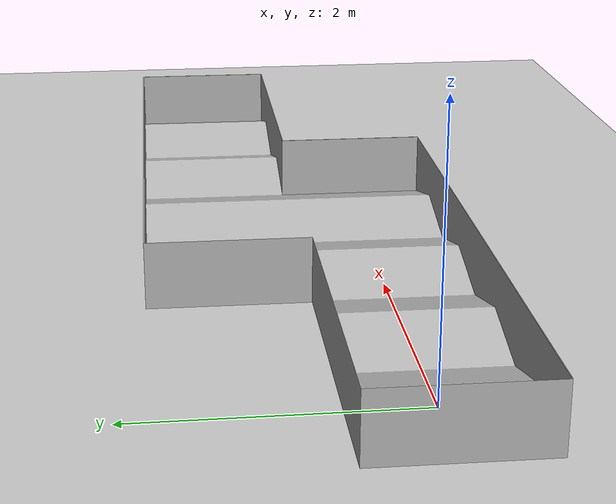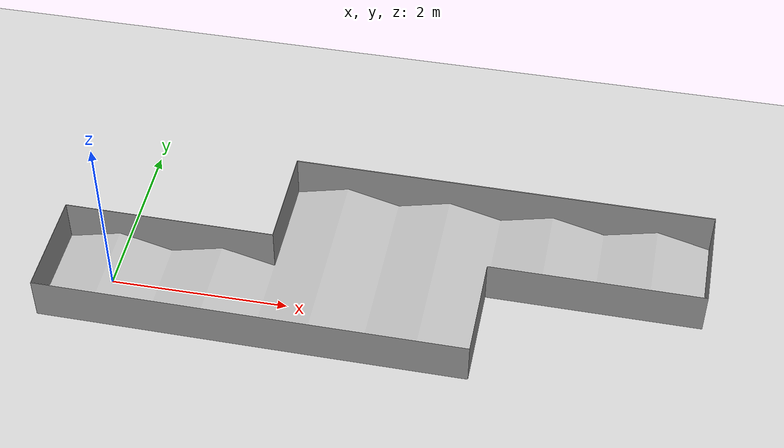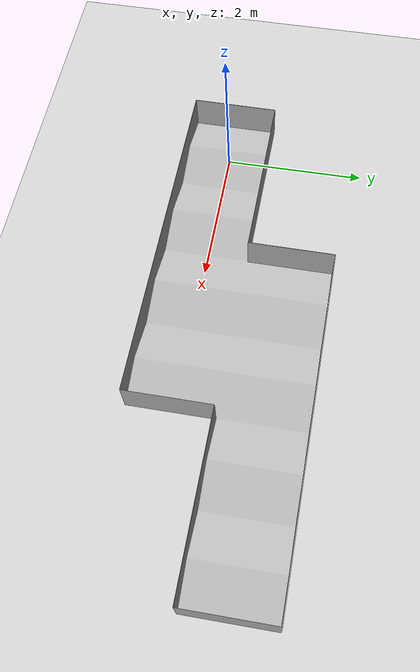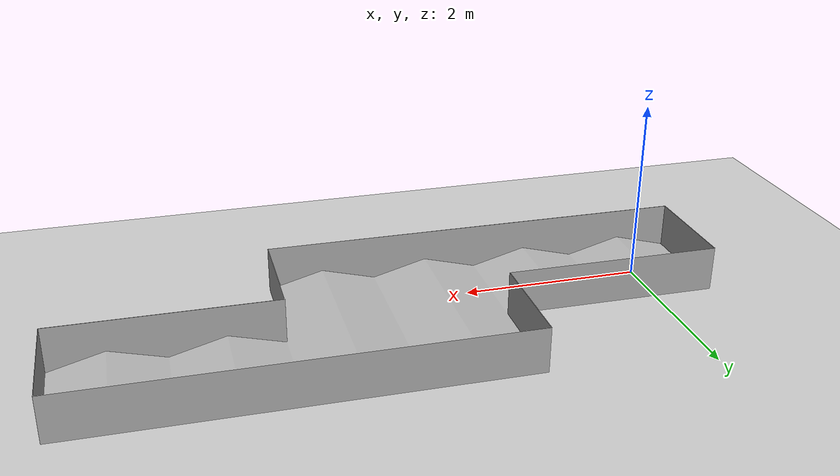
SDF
<sdf version="1.7">
 <world name="sample">
  <model name="ground_plane">
   <static>1</static>
   <link name="link">
    <collision name="collision">
     <geometry><plane><normal>0 0 1</normal><size>100 100</size></plane></geometry>
     <surface>
      <contact><collide_bitmask>65535</collide_bitmask></contact>
      <friction><ode><mu>100</mu><mu2>50</mu2></ode></friction>
     </surface>
    </collision>
    <visual name="visual">
     <cast_shadows>0</cast_shadows>
     <geometry><plane><normal>0 0 1</normal><size>100 100</size></plane></geometry>
     <material>
      <script><uri>file://media/materials/scripts/gazebo.material</uri><name>Gazebo/Grey</name></script>
     </material>
    </visual>
   </link>
  </model>
  <model name="continuous_ramp_plane">
   <static>1</static>
   <pose>-0.696153 -0.635071 -5e-06 1.5708 -4e-06 1.56261</pose>
   <link name="link">
    <collision name="collision">
     <geometry>
      <mesh><scale>0.01 0.01 0.01</scale><uri>model://continuous_ramp_plane/continuous_ramp_plane.dae</uri></mesh>
     </geometry>
     <surface><friction><ode><mu>100</mu><mu2>50</mu2></ode></friction></surface>
    </collision>
    <visual name="visual">
     <geometry>
      <mesh><scale>0.01 0.01 0.01</scale><uri>model://continuous_ramp_plane/continuous_ramp_plane.dae</uri></mesh>
     </geometry>
    </visual>
   </link>
  </model>
 </world>
</sdf>
